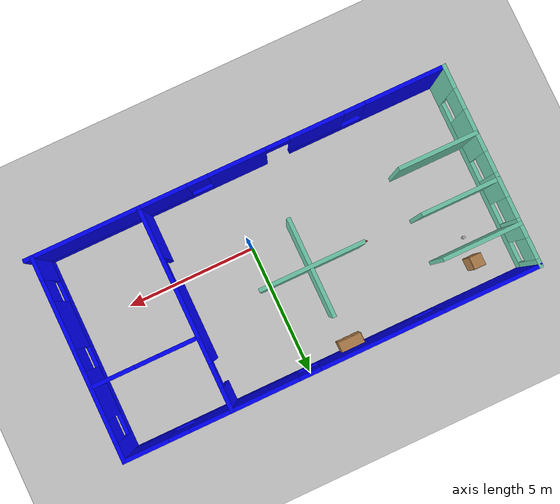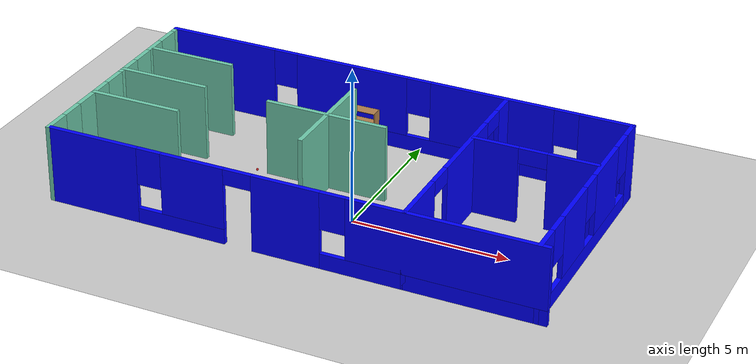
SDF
<sdf version="1.6">
 <world name="default">
  <light name="sun" type="directional">
   <pose>0 0 10 0 -0 0</pose>
   <diffuse>0.8 0.8 0.8 1</diffuse>
   <specular>0.2 0.2 0.2 1</specular>
   <attenuation>
    <range>1000</range>
    <constant>0.9</constant>
    <linear>0.01</linear>
    <quadratic>0.001</quadratic>
   </attenuation>
   <direction>-0.5 0.1 -0.9</direction>
  </light>
  <model name="ground_plane">
   <static>1</static>
   <link name="link">
    <collision name="collision">
     <geometry><plane><normal>0 0 1</normal><size>100 100</size></plane></geometry>
     <surface>
      <contact><collide_bitmask>65535</collide_bitmask></contact>
      <friction><ode><mu>100</mu><mu2>50</mu2></ode></friction>
     </surface>
    </collision>
    <visual name="visual">
     <cast_shadows>0</cast_shadows>
     <geometry><plane><normal>0 0 1</normal><size>100 100</size></plane></geometry>
     <material>
      <script><uri>file://media/materials/scripts/gazebo.material</uri><name>Gazebo/Grey</name></script>
     </material>
    </visual>
   </link>
  </model>
  <gravity>0 0 -9.8</gravity>
  <magnetic_field>6e-06 2.3e-05 -4.2e-05</magnetic_field>
  <atmosphere type="adiabatic"/>
  <physics name="default_physics" default="0" type="ode">
   <max_step_size>0.001</max_step_size>
   <real_time_factor>1</real_time_factor>
   <real_time_update_rate>1000</real_time_update_rate>
  </physics>
  <scene><ambient>0.4 0.4 0.4 1</ambient><background>0.7 0.7 0.7 1</background><shadows>1</shadows></scene>
  <spherical_coordinates>
   <surface_model>EARTH_WGS84</surface_model>
   <latitude_deg>0</latitude_deg>
   <longitude_deg>0</longitude_deg>
   <elevation>0</elevation>
   <heading_deg>0</heading_deg>
  </spherical_coordinates>
  <model name="greenbluebuilding">
   <pose>-0.750661 1.06885 0 0 -0 0</pose>
   <link name="Wall_11">
    <pose>-0.125 3.8 0 0 -0 0</pose>
    <visual name="Wall_11_Visual_0">
     <pose>-6.01588 0 1.25 0 -0 0</pose>
     <geometry><box><size>3.71823 0.15 2.5</size></box></geometry>
     <material>
      <script><uri>file://media/materials/scripts/gazebo.material</uri><name>Gazebo/Grey</name></script>
      <ambient>0 0 1 1</ambient>
     </material>
     <meta><layer>0</layer></meta>
    </visual>
    <collision name="Wall_11_Collision_0">
     <geometry><box><size>3.71823 0.15 2.5</size></box></geometry>
     <pose>-6.01588 0 1.25 0 -0 0</pose>
    </collision>
    <visual name="Wall_11_Visual_1">
     <pose>1.85912 0 0.25 0 -0 0</pose>
     <geometry><box><size>12.0318 0.15 0.5</size></box></geometry>
     <material>
      <script><uri>file://media/materials/scripts/gazebo.material</uri><name>Gazebo/Grey</name></script>
      <ambient>0 0 1 1</ambient>
     </material>
     <meta><layer>0</layer></meta>
    </visual>
    <collision name="Wall_11_Collision_1">
     <geometry><box><size>12.0318 0.15 0.5</size></box></geometry>
     <pose>1.85912 0 0.25 0 -0 0</pose>
    </collision>
    <visual name="Wall_11_Visual_2">
     <pose>-1.44255 0 1.5 0 -0 0</pose>
     <geometry><box><size>3.82843 0.15 2</size></box></geometry>
     <material>
      <script><uri>file://media/materials/scripts/gazebo.material</uri><name>Gazebo/Grey</name></script>
      <ambient>0 0 1 1</ambient>
     </material>
     <meta><layer>0</layer></meta>
    </visual>
    <collision name="Wall_11_Collision_2">
     <geometry><box><size>3.82843 0.15 2</size></box></geometry>
     <pose>-1.44255 0 1.5 0 -0 0</pose>
    </collision>
    <visual name="Wall_11_Visual_3">
     <pose>3.30558 0 1.5 0 -0 0</pose>
     <geometry><box><size>4.06784 0.15 2</size></box></geometry>
     <material>
      <script><uri>file://media/materials/scripts/gazebo.material</uri><name>Gazebo/Grey</name></script>
      <ambient>0 0 1 1</ambient>
     </material>
     <meta><layer>0</layer></meta>
    </visual>
    <collision name="Wall_11_Collision_3">
     <geometry><box><size>4.06784 0.15 2</size></box></geometry>
     <pose>3.30558 0 1.5 0 -0 0</pose>
    </collision>
    <visual name="Wall_11_Visual_4">
     <pose>7.00725 0 1.5 0 -0 0</pose>
     <geometry><box><size>1.7355 0.15 2</size></box></geometry>
     <material>
      <script><uri>file://media/materials/scripts/gazebo.material</uri><name>Gazebo/Grey</name></script>
      <ambient>0 0 1 1</ambient>
     </material>
     <meta><layer>0</layer></meta>
    </visual>
    <collision name="Wall_11_Collision_4">
     <geometry><box><size>1.7355 0.15 2</size></box></geometry>
     <pose>7.00725 0 1.5 0 -0 0</pose>
    </collision>
    <visual name="Wall_11_Visual_5">
     <pose>-3.75677 0 1.9 0 -0 0</pose>
     <geometry><box><size>0.8 0.15 1.2</size></box></geometry>
     <material>
      <script><uri>file://media/materials/scripts/gazebo.material</uri><name>Gazebo/Grey</name></script>
      <ambient>0 0 1 1</ambient>
     </material>
     <meta><layer>0</layer></meta>
    </visual>
    <collision name="Wall_11_Collision_5">
     <geometry><box><size>0.8 0.15 1.2</size></box></geometry>
     <pose>-3.75677 0 1.9 0 -0 0</pose>
    </collision>
    <visual name="Wall_11_Visual_6">
     <pose>0.871665 0 1.9 0 -0 0</pose>
     <geometry><box><size>0.8 0.15 1.2</size></box></geometry>
     <material>
      <script><uri>file://media/materials/scripts/gazebo.material</uri><name>Gazebo/Grey</name></script>
      <ambient>0 0 1 1</ambient>
     </material>
     <meta><layer>0</layer></meta>
    </visual>
    <collision name="Wall_11_Collision_6">
     <geometry><box><size>0.8 0.15 1.2</size></box></geometry>
     <pose>0.871665 0 1.9 0 -0 0</pose>
    </collision>
    <visual name="Wall_11_Visual_7">
     <pose>5.7395 0 1.9 0 -0 0</pose>
     <geometry><box><size>0.8 0.15 1.2</size></box></geometry>
     <material>
      <script><uri>file://media/materials/scripts/gazebo.material</uri><name>Gazebo/Grey</name></script>
      <ambient>0 0 1 1</ambient>
     </material>
     <meta><layer>0</layer></meta>
    </visual>
    <collision name="Wall_11_Collision_7">
     <geometry><box><size>0.8 0.15 1.2</size></box></geometry>
     <pose>5.7395 0 1.9 0 -0 0</pose>
    </collision>
   </link>
   <link name="Wall_12">
    <pose>7.675 0 0 0 0 -1.5708</pose>
    <visual name="Wall_12_Visual_0">
     <pose>-3.50932 0 1.25 0 -0 0</pose>
     <geometry><box><size>0.731351 0.15 2.5</size></box></geometry>
     <material>
      <script><uri>file://media/materials/scripts/gazebo.material</uri><name>Gazebo/Grey</name></script>
      <ambient>0 0 1 1</ambient>
     </material>
     <meta><layer>0</layer></meta>
    </visual>
    <collision name="Wall_12_Collision_0">
     <geometry><box><size>0.731351 0.15 2.5</size></box></geometry>
     <pose>-3.50932 0 1.25 0 -0 0</pose>
    </collision>
    <visual name="Wall_12_Visual_1">
     <pose>0.365676 0 0.25 0 -0 0</pose>
     <geometry><box><size>7.01865 0.15 0.5</size></box></geometry>
     <material>
      <script><uri>file://media/materials/scripts/gazebo.material</uri><name>Gazebo/Grey</name></script>
      <ambient>0 0 1 1</ambient>
     </material>
     <meta><layer>0</layer></meta>
    </visual>
    <collision name="Wall_12_Collision_1">
     <geometry><box><size>7.01865 0.15 0.5</size></box></geometry>
     <pose>0.365676 0 0.25 0 -0 0</pose>
    </collision>
    <visual name="Wall_12_Visual_2">
     <pose>-1.41364 0 1.5 0 -0 0</pose>
     <geometry><box><size>1.86002 0.15 2</size></box></geometry>
     <material>
      <script><uri>file://media/materials/scripts/gazebo.material</uri><name>Gazebo/Grey</name></script>
      <ambient>0 0 1 1</ambient>
     </material>
     <meta><layer>0</layer></meta>
    </visual>
    <collision name="Wall_12_Collision_2">
     <geometry><box><size>1.86002 0.15 2</size></box></geometry>
     <pose>-1.41364 0 1.5 0 -0 0</pose>
    </collision>
    <visual name="Wall_12_Visual_3">
     <pose>1.21978 0 1.5 0 -0 0</pose>
     <geometry><box><size>1.80682 0.15 2</size></box></geometry>
     <material>
      <script><uri>file://media/materials/scripts/gazebo.material</uri><name>Gazebo/Grey</name></script>
      <ambient>0 0 1 1</ambient>
     </material>
     <meta><layer>0</layer></meta>
    </visual>
    <collision name="Wall_12_Collision_3">
     <geometry><box><size>1.80682 0.15 2</size></box></geometry>
     <pose>1.21978 0 1.5 0 -0 0</pose>
    </collision>
    <visual name="Wall_12_Visual_4">
     <pose>3.39909 0 1.5 0 -0 0</pose>
     <geometry><box><size>0.95181 0.15 2</size></box></geometry>
     <material>
      <script><uri>file://media/materials/scripts/gazebo.material</uri><name>Gazebo/Grey</name></script>
      <ambient>0 0 1 1</ambient>
     </material>
     <meta><layer>0</layer></meta>
    </visual>
    <collision name="Wall_12_Collision_4">
     <geometry><box><size>0.95181 0.15 2</size></box></geometry>
     <pose>3.39909 0 1.5 0 -0 0</pose>
    </collision>
    <visual name="Wall_12_Visual_5">
     <pose>-2.74365 0 1.9 0 -0 0</pose>
     <geometry><box><size>0.8 0.15 1.2</size></box></geometry>
     <material>
      <script><uri>file://media/materials/scripts/gazebo.material</uri><name>Gazebo/Grey</name></script>
      <ambient>0 0 1 1</ambient>
     </material>
     <meta><layer>0</layer></meta>
    </visual>
    <collision name="Wall_12_Collision_5">
     <geometry><box><size>0.8 0.15 1.2</size></box></geometry>
     <pose>-2.74365 0 1.9 0 -0 0</pose>
    </collision>
    <visual name="Wall_12_Visual_6">
     <pose>-0.083629 0 1.9 0 -0 0</pose>
     <geometry><box><size>0.8 0.15 1.2</size></box></geometry>
     <material>
      <script><uri>file://media/materials/scripts/gazebo.material</uri><name>Gazebo/Grey</name></script>
      <ambient>0 0 1 1</ambient>
     </material>
     <meta><layer>0</layer></meta>
    </visual>
    <collision name="Wall_12_Collision_6">
     <geometry><box><size>0.8 0.15 1.2</size></box></geometry>
     <pose>-0.083629 0 1.9 0 -0 0</pose>
    </collision>
    <visual name="Wall_12_Visual_7">
     <pose>2.52319 0 1.9 0 -0 0</pose>
     <geometry><box><size>0.8 0.15 1.2</size></box></geometry>
     <material>
      <script><uri>file://media/materials/scripts/gazebo.material</uri><name>Gazebo/Grey</name></script>
      <ambient>0 0 1 1</ambient>
     </material>
     <meta><layer>0</layer></meta>
    </visual>
    <collision name="Wall_12_Collision_7">
     <geometry><box><size>0.8 0.15 1.2</size></box></geometry>
     <pose>2.52319 0 1.9 0 -0 0</pose>
    </collision>
   </link>
   <link name="Wall_14">
    <collision name="Wall_14_Collision">
     <geometry><box><size>3 0.15 2.5</size></box></geometry>
     <pose>0 0 1.25 0 -0 0</pose>
    </collision>
    <visual name="Wall_14_Visual">
     <pose>0 0 1.25 0 -0 0</pose>
     <geometry><box><size>3 0.15 2.5</size></box></geometry>
     <material>
      <script><uri>file://media/materials/scripts/gazebo.material</uri><name>Gazebo/Grey</name></script>
      <ambient>0.435294 0.796078 0.67451 1</ambient>
     </material>
     <meta><layer>0</layer></meta>
    </visual>
    <pose>-6.5 2.21164 0 0 -0 0</pose>
   </link>
   <link name="Wall_16">
    <collision name="Wall_16_Collision">
     <geometry><box><size>3 0.15 2.5</size></box></geometry>
     <pose>0 0 1.25 0 -0 0</pose>
    </collision>
    <visual name="Wall_16_Visual">
     <pose>0 0 1.25 0 -0 0</pose>
     <geometry><box><size>3 0.15 2.5</size></box></geometry>
     <material>
      <script><uri>file://media/materials/scripts/gazebo.material</uri><name>Gazebo/Grey</name></script>
      <ambient>0.435294 0.796078 0.67451 1</ambient>
     </material>
     <meta><layer>0</layer></meta>
    </visual>
    <pose>-6.5 0.509232 0 0 -0 0</pose>
   </link>
   <link name="Wall_18">
    <collision name="Wall_18_Collision">
     <geometry><box><size>3 0.15 2.5</size></box></geometry>
     <pose>0 0 1.25 0 -0 0</pose>
    </collision>
    <visual name="Wall_18_Visual">
     <pose>0 0 1.25 0 -0 0</pose>
     <geometry><box><size>3 0.15 2.5</size></box></geometry>
     <material>
      <script><uri>file://media/materials/scripts/gazebo.material</uri><name>Gazebo/Grey</name></script>
      <ambient>0.435294 0.796078 0.67451 1</ambient>
     </material>
     <meta><layer>0</layer></meta>
    </visual>
    <pose>-6.4734 -1.24638 0 0 -0 0</pose>
   </link>
   <link name="Wall_20">
    <collision name="Wall_20_Collision">
     <geometry><box><size>4 0.15 2.5</size></box></geometry>
     <pose>0 0 1.25 0 -0 0</pose>
    </collision>
    <visual name="Wall_20_Visual">
     <pose>0 0 1.25 0 -0 0</pose>
     <geometry><box><size>4 0.15 2.5</size></box></geometry>
     <material>
      <script><uri>file://media/materials/scripts/gazebo.material</uri><name>Gazebo/Grey</name></script>
      <ambient>0.435294 0.796078 0.67451 1</ambient>
     </material>
     <meta><layer>0</layer></meta>
    </visual>
    <pose>-0.866161 0.509232 0 0 -0 0</pose>
   </link>
   <link name="Wall_22">
    <collision name="Wall_22_Collision">
     <geometry><box><size>3.75 0.15 2.5</size></box></geometry>
     <pose>0 0 1.25 0 -0 0</pose>
    </collision>
    <visual name="Wall_22_Visual">
     <pose>0 0 1.25 0 -0 0</pose>
     <geometry><box><size>3.75 0.15 2.5</size></box></geometry>
     <material>
      <script><uri>file://media/materials/scripts/gazebo.material</uri><name>Gazebo/Grey</name></script>
      <ambient>0.435294 0.796078 0.67451 1</ambient>
     </material>
     <meta><layer>0</layer></meta>
    </visual>
    <pose>-0.822747 0.544646 0 0 0 -1.5708</pose>
   </link>
   <link name="Wall_24">
    <pose>3.67269 0 0 0 -0 1.5708</pose>
    <visual name="Wall_24_Visual_0">
     <pose>-2.87879 0 1.25 0 -0 0</pose>
     <geometry><box><size>1.99242 0.15 2.5</size></box></geometry>
     <material>
      <script><uri>file://media/materials/scripts/gazebo.material</uri><name>Gazebo/Grey</name></script>
      <ambient>0 0 1 1</ambient>
     </material>
     <meta><layer>0</layer></meta>
    </visual>
    <collision name="Wall_24_Collision_0">
     <geometry><box><size>1.99242 0.15 2.5</size></box></geometry>
     <pose>-2.87879 0 1.25 0 -0 0</pose>
    </collision>
    <visual name="Wall_24_Visual_1">
     <pose>0.535832 0 1.25 0 -0 0</pose>
     <geometry><box><size>3.03683 0.15 2.5</size></box></geometry>
     <material>
      <script><uri>file://media/materials/scripts/gazebo.material</uri><name>Gazebo/Grey</name></script>
      <ambient>0 0 1 1</ambient>
     </material>
     <meta><layer>0</layer></meta>
    </visual>
    <collision name="Wall_24_Collision_1">
     <geometry><box><size>3.03683 0.15 2.5</size></box></geometry>
     <pose>0.535832 0 1.25 0 -0 0</pose>
    </collision>
    <visual name="Wall_24_Visual_2">
     <pose>3.41462 0 1.25 0 -0 0</pose>
     <geometry><box><size>0.920753 0.15 2.5</size></box></geometry>
     <material>
      <script><uri>file://media/materials/scripts/gazebo.material</uri><name>Gazebo/Grey</name></script>
      <ambient>0 0 1 1</ambient>
     </material>
     <meta><layer>0</layer></meta>
    </visual>
    <collision name="Wall_24_Collision_2">
     <geometry><box><size>0.920753 0.15 2.5</size></box></geometry>
     <pose>3.41462 0 1.25 0 -0 0</pose>
    </collision>
    <visual name="Wall_24_Visual_3">
     <pose>-1.43258 0 2.25 0 -0 0</pose>
     <geometry><box><size>0.9 0.15 0.5</size></box></geometry>
     <material>
      <script><uri>file://media/materials/scripts/gazebo.material</uri><name>Gazebo/Grey</name></script>
      <ambient>0 0 1 1</ambient>
     </material>
     <meta><layer>0</layer></meta>
    </visual>
    <collision name="Wall_24_Collision_3">
     <geometry><box><size>0.9 0.15 0.5</size></box></geometry>
     <pose>-1.43258 0 2.25 0 -0 0</pose>
    </collision>
    <visual name="Wall_24_Visual_4">
     <pose>2.50425 0 2.25 0 -0 0</pose>
     <geometry><box><size>0.9 0.15 0.5</size></box></geometry>
     <material>
      <script><uri>file://media/materials/scripts/gazebo.material</uri><name>Gazebo/Grey</name></script>
      <ambient>0 0 1 1</ambient>
     </material>
     <meta><layer>0</layer></meta>
    </visual>
    <collision name="Wall_24_Collision_4">
     <geometry><box><size>0.9 0.15 0.5</size></box></geometry>
     <pose>2.50425 0 2.25 0 -0 0</pose>
    </collision>
   </link>
   <link name="Wall_26">
    <pose>5.65089 1.06784 0 0 -0 0</pose>
    <visual name="Wall_26_Visual_0">
     <pose>-1.25649 0 1.25 0 -0 0</pose>
     <geometry><box><size>1.48701 0.15 2.5</size></box></geometry>
     <material>
      <script><uri>file://media/materials/scripts/gazebo.material</uri><name>Gazebo/Grey</name></script>
      <ambient>0 0 1 1</ambient>
     </material>
     <meta><layer>0</layer></meta>
    </visual>
    <collision name="Wall_26_Collision_0">
     <geometry><box><size>1.48701 0.15 2.5</size></box></geometry>
     <pose>-1.25649 0 1.25 0 -0 0</pose>
    </collision>
    <visual name="Wall_26_Visual_1">
     <pose>1.19351 0 1.25 0 -0 0</pose>
     <geometry><box><size>1.61299 0.15 2.5</size></box></geometry>
     <material>
      <script><uri>file://media/materials/scripts/gazebo.material</uri><name>Gazebo/Grey</name></script>
      <ambient>0 0 1 1</ambient>
     </material>
     <meta><layer>0</layer></meta>
    </visual>
    <collision name="Wall_26_Collision_1">
     <geometry><box><size>1.61299 0.15 2.5</size></box></geometry>
     <pose>1.19351 0 1.25 0 -0 0</pose>
    </collision>
    <visual name="Wall_26_Visual_2">
     <pose>-0.062986 0 2.25 0 -0 0</pose>
     <geometry><box><size>0.9 0.15 0.5</size></box></geometry>
     <material>
      <script><uri>file://media/materials/scripts/gazebo.material</uri><name>Gazebo/Grey</name></script>
      <ambient>0 0 1 1</ambient>
     </material>
     <meta><layer>0</layer></meta>
    </visual>
    <collision name="Wall_26_Collision_2">
     <geometry><box><size>0.9 0.15 0.5</size></box></geometry>
     <pose>-0.062986 0 2.25 0 -0 0</pose>
    </collision>
   </link>
   <link name="Wall_7">
    <pose>0 -3.8 0 0 -0 0</pose>
    <visual name="Wall_7_Visual_0">
     <pose>-6.44679 0 1.25 0 -0 0</pose>
     <geometry><box><size>3.10643 0.15 2.5</size></box></geometry>
     <material>
      <script><uri>file://media/materials/scripts/gazebo.material</uri><name>Gazebo/Grey</name></script>
      <ambient>0 0 1 1</ambient>
     </material>
     <meta><layer>0</layer></meta>
    </visual>
    <collision name="Wall_7_Collision_0">
     <geometry><box><size>3.10643 0.15 2.5</size></box></geometry>
     <pose>-6.44679 0 1.25 0 -0 0</pose>
    </collision>
    <visual name="Wall_7_Visual_1">
     <pose>-0.026341 0 1.25 0 -0 0</pose>
     <geometry><box><size>2.18242 0.15 2.5</size></box></geometry>
     <material>
      <script><uri>file://media/materials/scripts/gazebo.material</uri><name>Gazebo/Grey</name></script>
      <ambient>0 0 1 1</ambient>
     </material>
     <meta><layer>0</layer></meta>
    </visual>
    <collision name="Wall_7_Collision_1">
     <geometry><box><size>2.18242 0.15 2.5</size></box></geometry>
     <pose>-0.026341 0 1.25 0 -0 0</pose>
    </collision>
    <visual name="Wall_7_Visual_2">
     <pose>-3.45556 0 0.25 0 -0 0</pose>
     <geometry><box><size>2.87602 0.15 0.5</size></box></geometry>
     <material>
      <script><uri>file://media/materials/scripts/gazebo.material</uri><name>Gazebo/Grey</name></script>
      <ambient>0 0 1 1</ambient>
     </material>
     <meta><layer>0</layer></meta>
    </visual>
    <collision name="Wall_7_Collision_2">
     <geometry><box><size>2.87602 0.15 0.5</size></box></geometry>
     <pose>-3.45556 0 0.25 0 -0 0</pose>
    </collision>
    <visual name="Wall_7_Visual_3">
     <pose>4.53244 0 0.25 0 -0 0</pose>
     <geometry><box><size>6.93513 0.15 0.5</size></box></geometry>
     <material>
      <script><uri>file://media/materials/scripts/gazebo.material</uri><name>Gazebo/Grey</name></script>
      <ambient>0 0 1 1</ambient>
     </material>
     <meta><layer>0</layer></meta>
    </visual>
    <collision name="Wall_7_Collision_3">
     <geometry><box><size>6.93513 0.15 0.5</size></box></geometry>
     <pose>4.53244 0 0.25 0 -0 0</pose>
    </collision>
    <visual name="Wall_7_Visual_4">
     <pose>-3.05556 0 1.5 0 -0 0</pose>
     <geometry><box><size>2.07602 0.15 2</size></box></geometry>
     <material>
      <script><uri>file://media/materials/scripts/gazebo.material</uri><name>Gazebo/Grey</name></script>
      <ambient>0 0 1 1</ambient>
     </material>
     <meta><layer>0</layer></meta>
    </visual>
    <collision name="Wall_7_Collision_4">
     <geometry><box><size>2.07602 0.15 2</size></box></geometry>
     <pose>-3.05556 0 1.5 0 -0 0</pose>
    </collision>
    <visual name="Wall_7_Visual_5">
     <pose>-3.05556 0 1.5 0 -0 0</pose>
     <geometry><box><size>2.07602 0.15 2</size></box></geometry>
     <material>
      <script><uri>file://media/materials/scripts/gazebo.material</uri><name>Gazebo/Grey</name></script>
      <ambient>0 0 1 1</ambient>
     </material>
     <meta><layer>0</layer></meta>
    </visual>
    <collision name="Wall_7_Collision_5">
     <geometry><box><size>2.07602 0.15 2</size></box></geometry>
     <pose>-3.05556 0 1.5 0 -0 0</pose>
    </collision>
    <visual name="Wall_7_Visual_6">
     <pose>4.93243 0 1.5 0 -0 0</pose>
     <geometry><box><size>6.13513 0.15 2</size></box></geometry>
     <material>
      <script><uri>file://media/materials/scripts/gazebo.material</uri><name>Gazebo/Grey</name></script>
      <ambient>0 0 1 1</ambient>
     </material>
     <meta><layer>0</layer></meta>
    </visual>
    <collision name="Wall_7_Collision_6">
     <geometry><box><size>6.13513 0.15 2</size></box></geometry>
     <pose>4.93243 0 1.5 0 -0 0</pose>
    </collision>
    <visual name="Wall_7_Visual_7">
     <pose>-4.49357 0 1.9 0 -0 0</pose>
     <geometry><box><size>0.8 0.15 1.2</size></box></geometry>
     <material>
      <script><uri>file://media/materials/scripts/gazebo.material</uri><name>Gazebo/Grey</name></script>
      <ambient>0 0 1 1</ambient>
     </material>
     <meta><layer>0</layer></meta>
    </visual>
    <collision name="Wall_7_Collision_7">
     <geometry><box><size>0.8 0.15 1.2</size></box></geometry>
     <pose>-4.49357 0 1.9 0 -0 0</pose>
    </collision>
    <visual name="Wall_7_Visual_8">
     <pose>1.46487 0 1.9 0 -0 0</pose>
     <geometry><box><size>0.8 0.15 1.2</size></box></geometry>
     <material>
      <script><uri>file://media/materials/scripts/gazebo.material</uri><name>Gazebo/Grey</name></script>
      <ambient>0 0 1 1</ambient>
     </material>
     <meta><layer>0</layer></meta>
    </visual>
    <collision name="Wall_7_Collision_8">
     <geometry><box><size>0.8 0.15 1.2</size></box></geometry>
     <pose>1.46487 0 1.9 0 -0 0</pose>
    </collision>
    <visual name="Wall_7_Visual_9">
     <pose>-1.56755 0 2.25 0 -0 0</pose>
     <geometry><box><size>0.9 0.15 0.5</size></box></geometry>
     <material>
      <script><uri>file://media/materials/scripts/gazebo.material</uri><name>Gazebo/Grey</name></script>
      <ambient>0 0 1 1</ambient>
     </material>
     <meta><layer>0</layer></meta>
    </visual>
    <collision name="Wall_7_Collision_9">
     <geometry><box><size>0.9 0.15 0.5</size></box></geometry>
     <pose>-1.56755 0 2.25 0 -0 0</pose>
    </collision>
    <visual name="Wall_7_Visual_10">
     <pose>-1.56755 0 2.25 0 -0 0</pose>
     <geometry><box><size>0.9 0.15 0.5</size></box></geometry>
     <material>
      <script><uri>file://media/materials/scripts/gazebo.material</uri><name>Gazebo/Grey</name></script>
      <ambient>0 0 1 1</ambient>
     </material>
     <meta><layer>0</layer></meta>
    </visual>
    <collision name="Wall_7_Collision_10">
     <geometry><box><size>0.9 0.15 0.5</size></box></geometry>
     <pose>-1.56755 0 2.25 0 -0 0</pose>
    </collision>
   </link>
   <link name="Wall_9">
    <pose>-7.925 0 0 0 -0 1.5708</pose>
    <visual name="Wall_9_Visual_0">
     <pose>-3.4124 0 1.25 0 -0 0</pose>
     <geometry><box><size>0.925209 0.15 2.5</size></box></geometry>
     <material>
      <script><uri>file://media/materials/scripts/gazebo.material</uri><name>Gazebo/Grey</name></script>
      <ambient>0.435294 0.796078 0.67451 1</ambient>
     </material>
     <meta><layer>0</layer></meta>
    </visual>
    <collision name="Wall_9_Collision_0">
     <geometry><box><size>0.925209 0.15 2.5</size></box></geometry>
     <pose>-3.4124 0 1.25 0 -0 0</pose>
    </collision>
    <visual name="Wall_9_Visual_1">
     <pose>0.462605 0 0.25 0 -0 0</pose>
     <geometry><box><size>6.82479 0.15 0.5</size></box></geometry>
     <material>
      <script><uri>file://media/materials/scripts/gazebo.material</uri><name>Gazebo/Grey</name></script>
      <ambient>0.435294 0.796078 0.67451 1</ambient>
     </material>
     <meta><layer>0</layer></meta>
    </visual>
    <collision name="Wall_9_Collision_1">
     <geometry><box><size>6.82479 0.15 0.5</size></box></geometry>
     <pose>0.462605 0 0.25 0 -0 0</pose>
    </collision>
    <visual name="Wall_9_Visual_2">
     <pose>-1.33948 0 1.5 0 -0 0</pose>
     <geometry><box><size>1.62062 0.15 2</size></box></geometry>
     <material>
      <script><uri>file://media/materials/scripts/gazebo.material</uri><name>Gazebo/Grey</name></script>
      <ambient>0.435294 0.796078 0.67451 1</ambient>
     </material>
     <meta><layer>0</layer></meta>
    </visual>
    <collision name="Wall_9_Collision_2">
     <geometry><box><size>1.62062 0.15 2</size></box></geometry>
     <pose>-1.33948 0 1.5 0 -0 0</pose>
    </collision>
    <visual name="Wall_9_Visual_3">
     <pose>0.735334 0 1.5 0 -0 0</pose>
     <geometry><box><size>0.929013 0.15 2</size></box></geometry>
     <material>
      <script><uri>file://media/materials/scripts/gazebo.material</uri><name>Gazebo/Grey</name></script>
      <ambient>0.435294 0.796078 0.67451 1</ambient>
     </material>
     <meta><layer>0</layer></meta>
    </visual>
    <collision name="Wall_9_Collision_3">
     <geometry><box><size>0.929013 0.15 2</size></box></geometry>
     <pose>0.735334 0 1.5 0 -0 0</pose>
    </collision>
    <visual name="Wall_9_Visual_4">
     <pose>2.37125 0 1.5 0 -0 0</pose>
     <geometry><box><size>0.742812 0.15 2</size></box></geometry>
     <material>
      <script><uri>file://media/materials/scripts/gazebo.material</uri><name>Gazebo/Grey</name></script>
      <ambient>0.435294 0.796078 0.67451 1</ambient>
     </material>
     <meta><layer>0</layer></meta>
    </visual>
    <collision name="Wall_9_Collision_4">
     <geometry><box><size>0.742812 0.15 2</size></box></geometry>
     <pose>2.37125 0 1.5 0 -0 0</pose>
    </collision>
    <visual name="Wall_9_Visual_5">
     <pose>3.70883 0 1.5 0 -0 0</pose>
     <geometry><box><size>0.332348 0.15 2</size></box></geometry>
     <material>
      <script><uri>file://media/materials/scripts/gazebo.material</uri><name>Gazebo/Grey</name></script>
      <ambient>0.435294 0.796078 0.67451 1</ambient>
     </material>
     <meta><layer>0</layer></meta>
    </visual>
    <collision name="Wall_9_Collision_5">
     <geometry><box><size>0.332348 0.15 2</size></box></geometry>
     <pose>3.70883 0 1.5 0 -0 0</pose>
    </collision>
    <visual name="Wall_9_Visual_6">
     <pose>-2.54979 0 1.9 0 -0 0</pose>
     <geometry><box><size>0.8 0.15 1.2</size></box></geometry>
     <material>
      <script><uri>file://media/materials/scripts/gazebo.material</uri><name>Gazebo/Grey</name></script>
      <ambient>0.435294 0.796078 0.67451 1</ambient>
     </material>
     <meta><layer>0</layer></meta>
    </visual>
    <collision name="Wall_9_Collision_6">
     <geometry><box><size>0.8 0.15 1.2</size></box></geometry>
     <pose>-2.54979 0 1.9 0 -0 0</pose>
    </collision>
    <visual name="Wall_9_Visual_7">
     <pose>-0.129173 0 1.9 0 -0 0</pose>
     <geometry><box><size>0.8 0.15 1.2</size></box></geometry>
     <material>
      <script><uri>file://media/materials/scripts/gazebo.material</uri><name>Gazebo/Grey</name></script>
      <ambient>0.435294 0.796078 0.67451 1</ambient>
     </material>
     <meta><layer>0</layer></meta>
    </visual>
    <collision name="Wall_9_Collision_7">
     <geometry><box><size>0.8 0.15 1.2</size></box></geometry>
     <pose>-0.129173 0 1.9 0 -0 0</pose>
    </collision>
    <visual name="Wall_9_Visual_8">
     <pose>1.59984 0 1.9 0 -0 0</pose>
     <geometry><box><size>0.8 0.15 1.2</size></box></geometry>
     <material>
      <script><uri>file://media/materials/scripts/gazebo.material</uri><name>Gazebo/Grey</name></script>
      <ambient>0.435294 0.796078 0.67451 1</ambient>
     </material>
     <meta><layer>0</layer></meta>
    </visual>
    <collision name="Wall_9_Collision_8">
     <geometry><box><size>0.8 0.15 1.2</size></box></geometry>
     <pose>1.59984 0 1.9 0 -0 0</pose>
    </collision>
    <visual name="Wall_9_Visual_9">
     <pose>3.14265 0 1.9 0 -0 0</pose>
     <geometry><box><size>0.8 0.15 1.2</size></box></geometry>
     <material>
      <script><uri>file://media/materials/scripts/gazebo.material</uri><name>Gazebo/Grey</name></script>
      <ambient>0.435294 0.796078 0.67451 1</ambient>
     </material>
     <meta><layer>0</layer></meta>
    </visual>
    <collision name="Wall_9_Collision_9">
     <geometry><box><size>0.8 0.15 1.2</size></box></geometry>
     <pose>3.14265 0 1.9 0 -0 0</pose>
    </collision>
   </link>
   <static>1</static>
  </model>
  <model name="cabinet">
   <static>1</static>
   <link name="cabinet_bottom_plate">
    <inertial>
     <pose>0 0 -1 0 -0 0</pose>
     <inertia><ixx>2.05</ixx><ixy>0</ixy><ixz>0</ixz><iyy>2.05</iyy><iyz>0</iyz><izz>2.05</izz></inertia>
     <mass>25</mass>
    </inertial>
    <collision name="cabinet_bottom_plate_geom">
     <pose>0 0 0.01 0 -0 0</pose>
     <geometry><box><size>0.45 0.45 0.02</size></box></geometry>
    </collision>
    <visual name="cabinet_bottom_plate_geom_visual">
     <pose>0 0 0.01 0 -0 0</pose>
     <geometry><box><size>0.45 0.45 0.02</size></box></geometry>
     <material>
      <script><uri>file://media/materials/scripts/gazebo.material</uri><name>Gazebo/Wood</name></script>
     </material>
    </visual>
    <collision name="cabinet_bottom_plate_geom_cabinet_back_plate">
     <pose>0.235 0 0.51 0 -0 0</pose>
     <geometry><box><size>0.02 0.45 1.02</size></box></geometry>
    </collision>
    <visual name="cabinet_bottom_plate_geom_cabinet_back_plate_visual">
     <pose>0.235 0 0.51 0 -0 0</pose>
     <geometry><box><size>0.02 0.45 1.02</size></box></geometry>
     <material>
      <script><uri>file://media/materials/scripts/gazebo.material</uri><name>Gazebo/Wood</name></script>
     </material>
    </visual>
    <collision name="cabinet_bottom_plate_geom_cabinet_left_plate">
     <pose>0 0.235 0.51 0 -0 0</pose>
     <geometry><box><size>0.45 0.02 1.02</size></box></geometry>
    </collision>
    <visual name="cabinet_bottom_plate_geom_cabinet_left_plate_visual">
     <pose>0 0.235 0.51 0 -0 0</pose>
     <geometry><box><size>0.45 0.02 1.02</size></box></geometry>
     <material>
      <script><uri>file://media/materials/scripts/gazebo.material</uri><name>Gazebo/Wood</name></script>
     </material>
    </visual>
    <collision name="cabinet_bottom_plate_geom_cabinet_middle_plate">
     <pose>0 0 0.51 0 -0 0</pose>
     <geometry><box><size>0.45 0.45 0.02</size></box></geometry>
    </collision>
    <visual name="cabinet_bottom_plate_geom_cabinet_middle_plate_visual">
     <pose>0 0 0.51 0 -0 0</pose>
     <geometry><box><size>0.45 0.45 0.02</size></box></geometry>
     <material>
      <script><uri>file://media/materials/scripts/gazebo.material</uri><name>Gazebo/Wood</name></script>
     </material>
    </visual>
    <collision name="cabinet_bottom_plate_geom_cabinet_right_plate">
     <pose>0 -0.235 0.51 0 -0 0</pose>
     <geometry><box><size>0.45 0.02 1.02</size></box></geometry>
    </collision>
    <visual name="cabinet_bottom_plate_geom_cabinet_right_plate_visual">
     <pose>0 -0.235 0.51 0 -0 0</pose>
     <geometry><box><size>0.45 0.02 1.02</size></box></geometry>
     <material>
      <script><uri>file://media/materials/scripts/gazebo.material</uri><name>Gazebo/Wood</name></script>
     </material>
    </visual>
    <collision name="cabinet_bottom_plate_geom_cabinet_top_plate">
     <pose>0 0 1.01 0 -0 0</pose>
     <geometry><box><size>0.45 0.45 0.02</size></box></geometry>
    </collision>
    <visual name="cabinet_bottom_plate_geom_cabinet_top_plate_visual">
     <pose>0 0 1.01 0 -0 0</pose>
     <geometry><box><size>0.45 0.45 0.02</size></box></geometry>
     <material>
      <script><uri>file://media/materials/scripts/gazebo.material</uri><name>Gazebo/Wood</name></script>
     </material>
    </visual>
   </link>
   <pose>-7.1597 3.89928 0 0 -0 0</pose>
  </model>
  <model name="beer">
   <link name="link">
    <pose>0 0 0.115 0 -0 0</pose>
    <inertial>
     <mass>0.39</mass>
     <inertia><ixx>0.00058</ixx><ixy>0</ixy><ixz>0</ixz><iyy>0.00058</iyy><iyz>0</iyz><izz>0.00019</izz></inertia>
    </inertial>
    <collision name="collision">
     <geometry><cylinder><radius>0.055</radius><length>0.23</length></cylinder></geometry>
    </collision>
    <visual name="visual">
     <geometry><cylinder><radius>0.055</radius><length>0.23</length></cylinder></geometry>
     <material>
      <script>
       <uri>model://beer/materials/scripts</uri>
       <uri>model://beer/materials/textures</uri>
       <name>Beer/Diffuse</name>
      </script>
     </material>
    </visual>
   </link>
   <pose>-7.28097 2.94253 -7e-06 -1e-06 -0 -2.3e-05</pose>
  </model>
  <model name="bookshelf">
   <static>1</static>
   <link name="link">
    <inertial><mass>1</mass></inertial>
    <collision name="back">
     <pose>0 0.005 0.6 0 -0 0</pose>
     <geometry><box><size>0.9 0.01 1.2</size></box></geometry>
    </collision>
    <visual name="visual1">
     <pose>0 0.005 0.6 0 -0 0</pose>
     <geometry><box><size>0.9 0.01 1.2</size></box></geometry>
     <material>
      <script><uri>file://media/materials/scripts/gazebo.material</uri><name>Gazebo/Wood</name></script>
     </material>
    </visual>
    <collision name="left_side">
     <pose>0.45 -0.195 0.6 0 -0 0</pose>
     <geometry><box><size>0.02 0.4 1.2</size></box></geometry>
    </collision>
    <visual name="visual2">
     <pose>0.45 -0.195 0.6 0 -0 0</pose>
     <geometry><box><size>0.02 0.4 1.2</size></box></geometry>
     <material>
      <script><uri>file://media/materials/scripts/gazebo.material</uri><name>Gazebo/Wood</name></script>
     </material>
    </visual>
    <collision name="right_side">
     <pose>-0.45 -0.195 0.6 0 -0 0</pose>
     <geometry><box><size>0.02 0.4 1.2</size></box></geometry>
    </collision>
    <visual name="visual3">
     <pose>-0.45 -0.195 0.6 0 -0 0</pose>
     <geometry><box><size>0.02 0.4 1.2</size></box></geometry>
     <material>
      <script><uri>file://media/materials/scripts/gazebo.material</uri><name>Gazebo/Wood</name></script>
     </material>
    </visual>
    <collision name="bottom">
     <pose>0 -0.195 0.03 0 -0 0</pose>
     <geometry><box><size>0.88 0.4 0.06</size></box></geometry>
    </collision>
    <visual name="visual4">
     <pose>0 -0.195 0.03 0 -0 0</pose>
     <geometry><box><size>0.88 0.4 0.06</size></box></geometry>
     <material>
      <script><uri>file://media/materials/scripts/gazebo.material</uri><name>Gazebo/Wood</name></script>
     </material>
    </visual>
    <collision name="top">
     <pose>0 -0.195 1.19 0 -0 0</pose>
     <geometry><box><size>0.88 0.4 0.02</size></box></geometry>
    </collision>
    <visual name="visual5">
     <pose>0 -0.195 1.19 0 -0 0</pose>
     <geometry><box><size>0.88 0.4 0.02</size></box></geometry>
     <material>
      <script><uri>file://media/materials/scripts/gazebo.material</uri><name>Gazebo/Wood</name></script>
     </material>
    </visual>
    <collision name="low_shelf">
     <pose>0 -0.195 0.43 0 -0 0</pose>
     <geometry><box><size>0.88 0.4 0.02</size></box></geometry>
    </collision>
    <visual name="visual6">
     <pose>0 -0.195 0.43 0 -0 0</pose>
     <geometry><box><size>0.88 0.4 0.02</size></box></geometry>
     <material>
      <script><uri>file://media/materials/scripts/gazebo.material</uri><name>Gazebo/Wood</name></script>
     </material>
    </visual>
    <collision name="high_shelf">
     <pose>0 -0.195 0.8 0 -0 0</pose>
     <geometry><box><size>0.88 0.4 0.02</size></box></geometry>
    </collision>
    <visual name="visual7">
     <pose>0 -0.195 0.8 0 -0 0</pose>
     <geometry><box><size>0.88 0.4 0.02</size></box></geometry>
     <material>
      <script><uri>file://media/materials/scripts/gazebo.material</uri><name>Gazebo/Wood</name></script>
     </material>
    </visual>
   </link>
   <pose>-1.78884 4.81358 0 0 -0 0</pose>
  </model>
  <model name="cricket_ball">
   <link name="link">
    <pose>0 0 0.0375 0 -0 0</pose>
    <inertial>
     <mass>0.1467</mass>
     <inertia>
      <ixx>8.25187e-05</ixx>
      <ixy>0</ixy>
      <ixz>0</ixz>
      <iyy>8.25187e-05</iyy>
      <iyz>0</iyz>
      <izz>8.25187e-05</izz>
     </inertia>
    </inertial>
    <collision name="collision">
     <geometry><sphere><radius>0.0375</radius></sphere></geometry>
     <surface>
      <contact>
       <poissons_ratio>0.347</poissons_ratio>
       <elastic_modulus>8.8e+09</elastic_modulus>
       <ode><kp>100000</kp><kd>100</kd><max_vel>100</max_vel><min_depth>0.001</min_depth></ode>
      </contact>
      <friction>
       <torsional>
        <coefficient>1</coefficient>
        <use_patch_radius>0</use_patch_radius>
        <surface_radius>0.01</surface_radius>
       </torsional>
      </friction>
     </surface>
    </collision>
    <visual name="visual">
     <geometry><sphere><radius>0.0375</radius></sphere></geometry>
     <material>
      <script><uri>file://media/materials/scripts/gazebo.material</uri><name>Gazebo/Red</name></script>
     </material>
    </visual>
    <velocity_decay><linear>0</linear><angular>0.005</angular></velocity_decay>
   </link>
   <pose>-3.98052 1.538 -0.001014 0 -0 0</pose>
  </model>
 </world>
</sdf>
